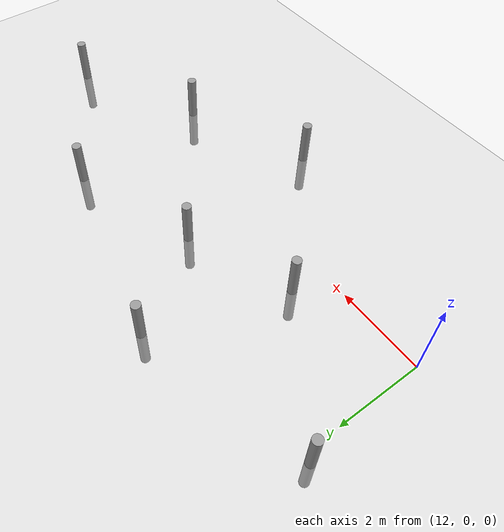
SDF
<sdf version="1.6">
 <world name="default">
  <model name="ground_plane">
   <static>1</static>
   <link name="link">
    <collision name="collision">
     <geometry><plane><normal>0 0 1</normal><size>100 100</size></plane></geometry>
     <surface>
      <contact><collide_bitmask>65535</collide_bitmask></contact>
      <friction><ode><mu>100</mu><mu2>50</mu2></ode></friction>
     </surface>
    </collision>
    <visual name="visual">
     <cast_shadows>0</cast_shadows>
     <geometry><plane><normal>0 0 1</normal><size>100 100</size></plane></geometry>
     <material>
      <script><uri>file://media/materials/scripts/gazebo.material</uri><name>Gazebo/Grey</name></script>
     </material>
    </visual>
   </link>
  </model>
  <model name="poleStat_5">
   <link name="link">
    <inertial>
     <mass>0.0953443</mass>
     <inertia>
      <ixx>0.0359089</ixx>
      <ixy>0</ixy>
      <ixz>0</ixz>
      <iyy>0.0359089</iyy>
      <iyz>0</iyz>
      <izz>0.000536427</izz>
     </inertia>
    </inertial>
    <visual name="visual">
     <geometry><cylinder><radius>0.106077</radius><length>2.11795</length></cylinder></geometry>
     <material>
      <script><name>Gazebo/Grey</name><uri>file://media/materials/scripts/gazebo.material</uri></script>
     </material>
    </visual>
    <collision name="collision">
     <geometry><cylinder><radius>0.106077</radius><length>2.11795</length></cylinder></geometry>
     <surface>
      <friction>
       <ode><mu>1</mu><mu2>1</mu2><fdir1>0 0 0</fdir1><slip1>0</slip1><slip2>0</slip2></ode>
       <torsional>
        <coefficient>1</coefficient>
        <patch_radius>0</patch_radius>
        <surface_radius>0</surface_radius>
        <use_patch_radius>1</use_patch_radius>
        <ode><slip>0</slip></ode>
       </torsional>
      </friction>
      <bounce><restitution_coefficient>0</restitution_coefficient><threshold>1e+06</threshold></bounce>
      <contact>
       <collide_without_contact>0</collide_without_contact>
       <collide_without_contact_bitmask>1</collide_without_contact_bitmask>
       <collide_bitmask>1</collide_bitmask>
       <ode>
        <soft_cfm>0</soft_cfm>
        <soft_erp>0.2</soft_erp>
        <kp>1e+13</kp>
        <kd>1</kd>
        <max_vel>0.01</max_vel>
        <min_depth>0</min_depth>
       </ode>
       <bullet>
        <split_impulse>1</split_impulse>
        <split_impulse_penetration_threshold>-0.01</split_impulse_penetration_threshold>
        <soft_cfm>0</soft_cfm>
        <soft_erp>0.2</soft_erp>
        <kp>1e+13</kp>
        <kd>1</kd>
       </bullet>
      </contact>
     </surface>
    </collision>
   </link>
   <static>1</static>
   <pose>11.8334 2.82857 0 0 -0 0</pose>
  </model>
  <model name="poleStat_7">
   <link name="link">
    <inertial>
     <mass>0.0953443</mass>
     <inertia>
      <ixx>0.0359089</ixx>
      <ixy>0</ixy>
      <ixz>0</ixz>
      <iyy>0.0359089</iyy>
      <iyz>0</iyz>
      <izz>0.000536427</izz>
     </inertia>
    </inertial>
    <visual name="visual">
     <geometry><cylinder><radius>0.106077</radius><length>2.11795</length></cylinder></geometry>
     <material>
      <script><name>Gazebo/Grey</name><uri>file://media/materials/scripts/gazebo.material</uri></script>
     </material>
    </visual>
    <collision name="collision">
     <geometry><cylinder><radius>0.106077</radius><length>2.11795</length></cylinder></geometry>
     <surface>
      <friction>
       <ode><mu>1</mu><mu2>1</mu2><fdir1>0 0 0</fdir1><slip1>0</slip1><slip2>0</slip2></ode>
       <torsional>
        <coefficient>1</coefficient>
        <patch_radius>0</patch_radius>
        <surface_radius>0</surface_radius>
        <use_patch_radius>1</use_patch_radius>
        <ode><slip>0</slip></ode>
       </torsional>
      </friction>
      <bounce><restitution_coefficient>0</restitution_coefficient><threshold>1e+06</threshold></bounce>
      <contact>
       <collide_without_contact>0</collide_without_contact>
       <collide_without_contact_bitmask>1</collide_without_contact_bitmask>
       <collide_bitmask>1</collide_bitmask>
       <ode>
        <soft_cfm>0</soft_cfm>
        <soft_erp>0.2</soft_erp>
        <kp>1e+13</kp>
        <kd>1</kd>
        <max_vel>0.01</max_vel>
        <min_depth>0</min_depth>
       </ode>
       <bullet>
        <split_impulse>1</split_impulse>
        <split_impulse_penetration_threshold>-0.01</split_impulse_penetration_threshold>
        <soft_cfm>0</soft_cfm>
        <soft_erp>0.2</soft_erp>
        <kp>1e+13</kp>
        <kd>1</kd>
       </bullet>
      </contact>
     </surface>
    </collision>
   </link>
   <static>1</static>
   <pose>14.7409 0.795039 0 0 -0 0</pose>
  </model>
  <model name="poleStat_8">
   <link name="link">
    <inertial>
     <mass>0.0953443</mass>
     <inertia>
      <ixx>0.0359089</ixx>
      <ixy>0</ixy>
      <ixz>0</ixz>
      <iyy>0.0359089</iyy>
      <iyz>0</iyz>
      <izz>0.000536427</izz>
     </inertia>
    </inertial>
    <visual name="visual">
     <geometry><cylinder><radius>0.106077</radius><length>2.11795</length></cylinder></geometry>
     <material>
      <script><name>Gazebo/Grey</name><uri>file://media/materials/scripts/gazebo.material</uri></script>
     </material>
    </visual>
    <collision name="collision">
     <geometry><cylinder><radius>0.106077</radius><length>2.11795</length></cylinder></geometry>
     <surface>
      <friction>
       <ode><mu>1</mu><mu2>1</mu2><fdir1>0 0 0</fdir1><slip1>0</slip1><slip2>0</slip2></ode>
       <torsional>
        <coefficient>1</coefficient>
        <patch_radius>0</patch_radius>
        <surface_radius>0</surface_radius>
        <use_patch_radius>1</use_patch_radius>
        <ode><slip>0</slip></ode>
       </torsional>
      </friction>
      <bounce><restitution_coefficient>0</restitution_coefficient><threshold>1e+06</threshold></bounce>
      <contact>
       <collide_without_contact>0</collide_without_contact>
       <collide_without_contact_bitmask>1</collide_without_contact_bitmask>
       <collide_bitmask>1</collide_bitmask>
       <ode>
        <soft_cfm>0</soft_cfm>
        <soft_erp>0.2</soft_erp>
        <kp>1e+13</kp>
        <kd>1</kd>
        <max_vel>0.01</max_vel>
        <min_depth>0</min_depth>
       </ode>
       <bullet>
        <split_impulse>1</split_impulse>
        <split_impulse_penetration_threshold>-0.01</split_impulse_penetration_threshold>
        <soft_cfm>0</soft_cfm>
        <soft_erp>0.2</soft_erp>
        <kp>1e+13</kp>
        <kd>1</kd>
       </bullet>
      </contact>
     </surface>
    </collision>
   </link>
   <static>1</static>
   <pose>15.7131 3.88025 0 0 -0 0</pose>
  </model>
  <model name="poleStat_9">
   <link name="link">
    <inertial>
     <mass>0.0953443</mass>
     <inertia>
      <ixx>0.0359089</ixx>
      <ixy>0</ixy>
      <ixz>0</ixz>
      <iyy>0.0359089</iyy>
      <iyz>0</iyz>
      <izz>0.000536427</izz>
     </inertia>
    </inertial>
    <visual name="visual">
     <geometry><cylinder><radius>0.106077</radius><length>2.11795</length></cylinder></geometry>
     <material>
      <script><name>Gazebo/Grey</name><uri>file://media/materials/scripts/gazebo.material</uri></script>
     </material>
    </visual>
    <collision name="collision">
     <geometry><cylinder><radius>0.106077</radius><length>2.11795</length></cylinder></geometry>
     <surface>
      <friction>
       <ode><mu>1</mu><mu2>1</mu2><fdir1>0 0 0</fdir1><slip1>0</slip1><slip2>0</slip2></ode>
       <torsional>
        <coefficient>1</coefficient>
        <patch_radius>0</patch_radius>
        <surface_radius>0</surface_radius>
        <use_patch_radius>1</use_patch_radius>
        <ode><slip>0</slip></ode>
       </torsional>
      </friction>
      <bounce><restitution_coefficient>0</restitution_coefficient><threshold>1e+06</threshold></bounce>
      <contact>
       <collide_without_contact>0</collide_without_contact>
       <collide_without_contact_bitmask>1</collide_without_contact_bitmask>
       <collide_bitmask>1</collide_bitmask>
       <ode>
        <soft_cfm>0</soft_cfm>
        <soft_erp>0.2</soft_erp>
        <kp>1e+13</kp>
        <kd>1</kd>
        <max_vel>0.01</max_vel>
        <min_depth>0</min_depth>
       </ode>
       <bullet>
        <split_impulse>1</split_impulse>
        <split_impulse_penetration_threshold>-0.01</split_impulse_penetration_threshold>
        <soft_cfm>0</soft_cfm>
        <soft_erp>0.2</soft_erp>
        <kp>1e+13</kp>
        <kd>1</kd>
       </bullet>
      </contact>
     </surface>
    </collision>
   </link>
   <static>1</static>
   <pose>17.1623 1.76196 0 0 -0 0</pose>
  </model>
  <model name="poleStat_10">
   <link name="link">
    <inertial>
     <mass>0.0953443</mass>
     <inertia>
      <ixx>0.0359089</ixx>
      <ixy>0</ixy>
      <ixz>0</ixz>
      <iyy>0.0359089</iyy>
      <iyz>0</iyz>
      <izz>0.000536427</izz>
     </inertia>
    </inertial>
    <visual name="visual">
     <geometry><cylinder><radius>0.106077</radius><length>2.11795</length></cylinder></geometry>
     <material>
      <script><name>Gazebo/Grey</name><uri>file://media/materials/scripts/gazebo.material</uri></script>
     </material>
    </visual>
    <collision name="collision">
     <geometry><cylinder><radius>0.106077</radius><length>2.11795</length></cylinder></geometry>
     <surface>
      <friction>
       <ode><mu>1</mu><mu2>1</mu2><fdir1>0 0 0</fdir1><slip1>0</slip1><slip2>0</slip2></ode>
       <torsional>
        <coefficient>1</coefficient>
        <patch_radius>0</patch_radius>
        <surface_radius>0</surface_radius>
        <use_patch_radius>1</use_patch_radius>
        <ode><slip>0</slip></ode>
       </torsional>
      </friction>
      <bounce><restitution_coefficient>0</restitution_coefficient><threshold>1e+06</threshold></bounce>
      <contact>
       <collide_without_contact>0</collide_without_contact>
       <collide_without_contact_bitmask>1</collide_without_contact_bitmask>
       <collide_bitmask>1</collide_bitmask>
       <ode>
        <soft_cfm>0</soft_cfm>
        <soft_erp>0.2</soft_erp>
        <kp>1e+13</kp>
        <kd>1</kd>
        <max_vel>0.01</max_vel>
        <min_depth>0</min_depth>
       </ode>
       <bullet>
        <split_impulse>1</split_impulse>
        <split_impulse_penetration_threshold>-0.01</split_impulse_penetration_threshold>
        <soft_cfm>0</soft_cfm>
        <soft_erp>0.2</soft_erp>
        <kp>1e+13</kp>
        <kd>1</kd>
       </bullet>
      </contact>
     </surface>
    </collision>
   </link>
   <static>1</static>
   <pose>20.1262 2.77676 0 0 -0 0</pose>
  </model>
  <model name="poleStat_11">
   <link name="link">
    <inertial>
     <mass>0.0953443</mass>
     <inertia>
      <ixx>0.0359089</ixx>
      <ixy>0</ixy>
      <ixz>0</ixz>
      <iyy>0.0359089</iyy>
      <iyz>0</iyz>
      <izz>0.000536427</izz>
     </inertia>
    </inertial>
    <visual name="visual">
     <geometry><cylinder><radius>0.106077</radius><length>2.11795</length></cylinder></geometry>
     <material>
      <script><name>Gazebo/Grey</name><uri>file://media/materials/scripts/gazebo.material</uri></script>
     </material>
    </visual>
    <collision name="collision">
     <geometry><cylinder><radius>0.106077</radius><length>2.11795</length></cylinder></geometry>
     <surface>
      <friction>
       <ode><mu>1</mu><mu2>1</mu2><fdir1>0 0 0</fdir1><slip1>0</slip1><slip2>0</slip2></ode>
       <torsional>
        <coefficient>1</coefficient>
        <patch_radius>0</patch_radius>
        <surface_radius>0</surface_radius>
        <use_patch_radius>1</use_patch_radius>
        <ode><slip>0</slip></ode>
       </torsional>
      </friction>
      <bounce><restitution_coefficient>0</restitution_coefficient><threshold>1e+06</threshold></bounce>
      <contact>
       <collide_without_contact>0</collide_without_contact>
       <collide_without_contact_bitmask>1</collide_without_contact_bitmask>
       <collide_bitmask>1</collide_bitmask>
       <ode>
        <soft_cfm>0</soft_cfm>
        <soft_erp>0.2</soft_erp>
        <kp>1e+13</kp>
        <kd>1</kd>
        <max_vel>0.01</max_vel>
        <min_depth>0</min_depth>
       </ode>
       <bullet>
        <split_impulse>1</split_impulse>
        <split_impulse_penetration_threshold>-0.01</split_impulse_penetration_threshold>
        <soft_cfm>0</soft_cfm>
        <soft_erp>0.2</soft_erp>
        <kp>1e+13</kp>
        <kd>1</kd>
       </bullet>
      </contact>
     </surface>
    </collision>
   </link>
   <static>1</static>
   <pose>17.5661 -1.92441 0 0 -0 0</pose>
  </model>
  <model name="poleStat_12">
   <link name="link">
    <inertial>
     <mass>0.0953443</mass>
     <inertia>
      <ixx>0.0359089</ixx>
      <ixy>0</ixy>
      <ixz>0</ixz>
      <iyy>0.0359089</iyy>
      <iyz>0</iyz>
      <izz>0.000536427</izz>
     </inertia>
    </inertial>
    <visual name="visual">
     <geometry><cylinder><radius>0.106077</radius><length>2.11795</length></cylinder></geometry>
     <material>
      <script><name>Gazebo/Grey</name><uri>file://media/materials/scripts/gazebo.material</uri></script>
     </material>
    </visual>
    <collision name="collision">
     <geometry><cylinder><radius>0.106077</radius><length>2.11795</length></cylinder></geometry>
     <surface>
      <friction>
       <ode><mu>1</mu><mu2>1</mu2><fdir1>0 0 0</fdir1><slip1>0</slip1><slip2>0</slip2></ode>
       <torsional>
        <coefficient>1</coefficient>
        <patch_radius>0</patch_radius>
        <surface_radius>0</surface_radius>
        <use_patch_radius>1</use_patch_radius>
        <ode><slip>0</slip></ode>
       </torsional>
      </friction>
      <bounce><restitution_coefficient>0</restitution_coefficient><threshold>1e+06</threshold></bounce>
      <contact>
       <collide_without_contact>0</collide_without_contact>
       <collide_without_contact_bitmask>1</collide_without_contact_bitmask>
       <collide_bitmask>1</collide_bitmask>
       <ode>
        <soft_cfm>0</soft_cfm>
        <soft_erp>0.2</soft_erp>
        <kp>1e+13</kp>
        <kd>1</kd>
        <max_vel>0.01</max_vel>
        <min_depth>0</min_depth>
       </ode>
       <bullet>
        <split_impulse>1</split_impulse>
        <split_impulse_penetration_threshold>-0.01</split_impulse_penetration_threshold>
        <soft_cfm>0</soft_cfm>
        <soft_erp>0.2</soft_erp>
        <kp>1e+13</kp>
        <kd>1</kd>
       </bullet>
      </contact>
     </surface>
    </collision>
   </link>
   <static>1</static>
   <pose>20.5297 -0.670819 0 0 -0 0</pose>
  </model>
  <model name="poleStat_13">
   <link name="link">
    <inertial>
     <mass>0.0953443</mass>
     <inertia>
      <ixx>0.0359089</ixx>
      <ixy>0</ixy>
      <ixz>0</ixz>
      <iyy>0.0359089</iyy>
      <iyz>0</iyz>
      <izz>0.000536427</izz>
     </inertia>
    </inertial>
    <visual name="visual">
     <geometry><cylinder><radius>0.106077</radius><length>2.11795</length></cylinder></geometry>
     <material>
      <script><name>Gazebo/Grey</name><uri>file://media/materials/scripts/gazebo.material</uri></script>
     </material>
    </visual>
    <collision name="collision">
     <geometry><cylinder><radius>0.106077</radius><length>2.11795</length></cylinder></geometry>
     <surface>
      <friction>
       <ode><mu>1</mu><mu2>1</mu2><fdir1>0 0 0</fdir1><slip1>0</slip1><slip2>0</slip2></ode>
       <torsional>
        <coefficient>1</coefficient>
        <patch_radius>0</patch_radius>
        <surface_radius>0</surface_radius>
        <use_patch_radius>1</use_patch_radius>
        <ode><slip>0</slip></ode>
       </torsional>
      </friction>
      <bounce><restitution_coefficient>0</restitution_coefficient><threshold>1e+06</threshold></bounce>
      <contact>
       <collide_without_contact>0</collide_without_contact>
       <collide_without_contact_bitmask>1</collide_without_contact_bitmask>
       <collide_bitmask>1</collide_bitmask>
       <ode>
        <soft_cfm>0</soft_cfm>
        <soft_erp>0.2</soft_erp>
        <kp>1e+13</kp>
        <kd>1</kd>
        <max_vel>0.01</max_vel>
        <min_depth>0</min_depth>
       </ode>
       <bullet>
        <split_impulse>1</split_impulse>
        <split_impulse_penetration_threshold>-0.01</split_impulse_penetration_threshold>
        <soft_cfm>0</soft_cfm>
        <soft_erp>0.2</soft_erp>
        <kp>1e+13</kp>
        <kd>1</kd>
       </bullet>
      </contact>
     </surface>
    </collision>
   </link>
   <static>1</static>
   <pose>23.5273 0.836651 0 0 -0 0</pose>
  </model>
 </world>
</sdf>
